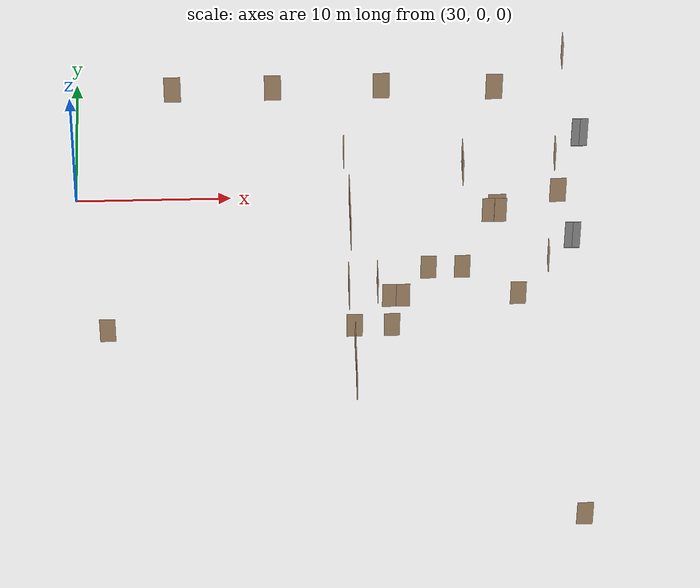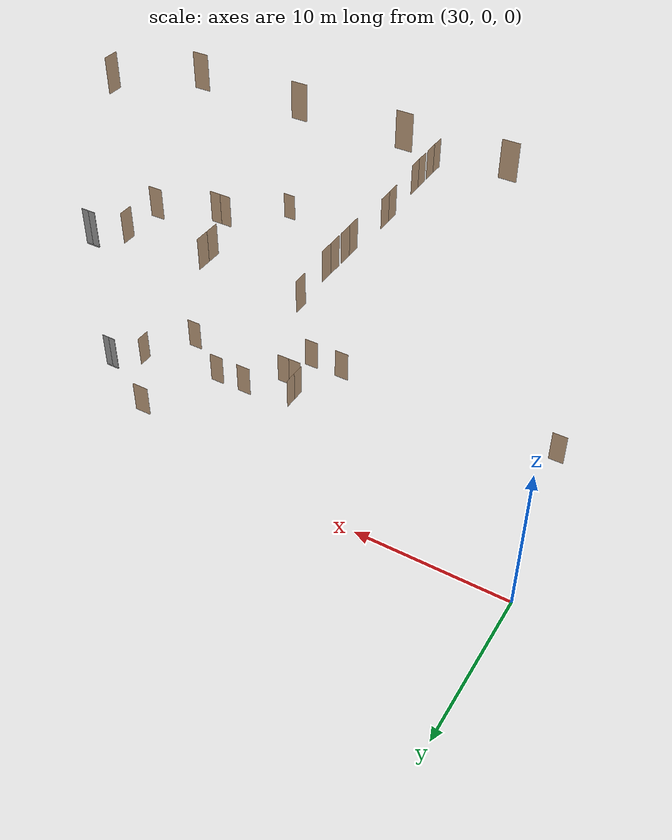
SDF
<sdf version="1.7">
 <world name="world">
  <include><uri>model://sun</uri></include>
  <model name="l1_door16">
   <pose>49.225 -8.125 0.0 0 0 1.5707963267948966</pose>
   <link name="right">
    <pose>-0.4375 0 1.11 0 0 0</pose>
    <visual name="right_visual">
     <geometry><box><size>0.865 0.03 2.2</size></box></geometry>
     <material><ambient>0.5 0.25 0 0.6</ambient><diffuse>0.5 0.25 0 0.6</diffuse></material>
    </visual>
    <collision name="right_collision">
     <geometry><box><size>0.865 0.03 2.2</size></box></geometry>
     <surface><contact><collide_bitmask>0x02</collide_bitmask></contact></surface>
    </collision>
    <inertial>
     <mass>50.0</mass>
     <inertia><ixx>20.17041666666667</ixx><iyy>23.284270833333338</iyy><izz>3.121354166666667</izz></inertia>
    </inertial>
   </link>
   <joint name="right_joint" type="revolute">
    <parent>world</parent>
    <child>right</child>
    <axis><xyz>0 0 1</xyz><limit><lower>0</lower><upper>1.57</upper></limit></axis>
    <pose>-0.4375 0 0 0 0 0</pose>
   </joint>
   <link name="left">
    <pose>0.4375 0 1.11 0 0 0</pose>
    <visual name="left_visual">
     <geometry><box><size>0.865 0.03 2.2</size></box></geometry>
     <material><ambient>0.5 0.25 0 0.6</ambient><diffuse>0.5 0.25 0 0.6</diffuse></material>
    </visual>
    <collision name="left_collision">
     <geometry><box><size>0.865 0.03 2.2</size></box></geometry>
     <surface><contact><collide_bitmask>0x02</collide_bitmask></contact></surface>
    </collision>
    <inertial>
     <mass>50.0</mass>
     <inertia><ixx>20.17041666666667</ixx><iyy>23.284270833333338</iyy><izz>3.121354166666667</izz></inertia>
    </inertial>
   </link>
   <joint name="left_joint" type="revolute">
    <parent>world</parent>
    <child>left</child>
    <axis><xyz>0 0 1</xyz><limit><lower>-1.57</lower><upper>0</upper></limit></axis>
    <pose>0.4375 0 0 0 0 0</pose>
   </joint>
   <plugin name="door" filename="libdoor.so">
    <v_max_door>0.5</v_max_door>
    <a_max_door>0.3</a_max_door>
    <a_nom_door>0.15</a_nom_door>
    <dx_min_door>0.01</dx_min_door>
    <f_max_door>500.0</f_max_door>
    <door name="l1_door16" type="DoubleSwingDoor" left_joint_name="left_joint" right_joint_name="right_joint"/>
   </plugin>
  </model>
  <model name="l1_door14">
   <pose>52.5 -7.0 0.0 0 0 3.141592653589793</pose>
   <plugin name="door" filename="libdoor.so">
    <v_max_door>0.5</v_max_door>
    <a_max_door>0.3</a_max_door>
    <a_nom_door>0.15</a_nom_door>
    <dx_min_door>0.01</dx_min_door>
    <f_max_door>500.0</f_max_door>
    <door name="l1_door14" type="SwingDoor" left_joint_name="left_joint" right_joint_name="empty_joint"/>
   </plugin>
   <link name="left">
    <pose>0 0 1.11 0 0 0</pose>
    <visual name="left_visual">
     <geometry><box><size>0.99 0.03 2.2</size></box></geometry>
     <material><ambient>0.5 0.25 0 0.6</ambient><diffuse>0.5 0.25 0 0.6</diffuse></material>
    </visual>
    <collision name="left_collision">
     <geometry><box><size>0.99 0.03 2.2</size></box></geometry>
     <surface><contact><collide_bitmask>0x02</collide_bitmask></contact></surface>
    </collision>
    <inertial>
     <mass>50.0</mass>
     <inertia><ixx>20.17041666666667</ixx><iyy>24.250416666666673</iyy><izz>4.0875</izz></inertia>
    </inertial>
   </link>
   <joint name="left_joint" type="revolute">
    <parent>world</parent>
    <child>left</child>
    <axis><xyz>0 0 1</xyz><limit><lower>-1.57</lower><upper>0</upper></limit></axis>
    <pose>0.5 0 0 0 0 0</pose>
   </joint>
  </model>
  <model name="l1_door13">
   <pose>54.650000000000006 -7.0 0.0 0 0 3.141592653589793</pose>
   <plugin name="door" filename="libdoor.so">
    <v_max_door>0.5</v_max_door>
    <a_max_door>0.3</a_max_door>
    <a_nom_door>0.15</a_nom_door>
    <dx_min_door>0.01</dx_min_door>
    <f_max_door>500.0</f_max_door>
    <door name="l1_door13" type="SwingDoor" left_joint_name="empty_joint" right_joint_name="right_joint"/>
   </plugin>
   <link name="right">
    <pose>0 0 1.11 0 0 0</pose>
    <visual name="right_visual">
     <geometry><box><size>0.99 0.03 2.2</size></box></geometry>
     <material><ambient>0.5 0.25 0 0.6</ambient><diffuse>0.5 0.25 0 0.6</diffuse></material>
    </visual>
    <collision name="right_collision">
     <geometry><box><size>0.99 0.03 2.2</size></box></geometry>
     <surface><contact><collide_bitmask>0x02</collide_bitmask></contact></surface>
    </collision>
    <inertial>
     <mass>50.0</mass>
     <inertia><ixx>20.17041666666667</ixx><iyy>24.250416666666673</iyy><izz>4.0875</izz></inertia>
    </inertial>
   </link>
   <joint name="right_joint" type="revolute">
    <parent>world</parent>
    <child>right</child>
    <axis><xyz>0 0 1</xyz><limit><lower>0</lower><upper>1.57</upper></limit></axis>
    <pose>0.5 0 0 0 0 0</pose>
   </joint>
  </model>
  <model name="l1_door11">
   <pose>60.2 -6.25 0.0 0 0 -1.5707963267948966</pose>
   <plugin name="door" filename="libdoor.so">
    <v_max_door>0.5</v_max_door>
    <a_max_door>0.3</a_max_door>
    <a_nom_door>0.15</a_nom_door>
    <dx_min_door>0.01</dx_min_door>
    <f_max_door>500.0</f_max_door>
    <door name="l1_door11" type="SwingDoor" left_joint_name="left_joint" right_joint_name="empty_joint"/>
   </plugin>
   <link name="left">
    <pose>0 0 1.11 0 0 0</pose>
    <visual name="left_visual">
     <geometry><box><size>0.99 0.03 2.2</size></box></geometry>
     <material><ambient>0.5 0.25 0 0.6</ambient><diffuse>0.5 0.25 0 0.6</diffuse></material>
    </visual>
    <collision name="left_collision">
     <geometry><box><size>0.99 0.03 2.2</size></box></geometry>
     <surface><contact><collide_bitmask>0x02</collide_bitmask></contact></surface>
    </collision>
    <inertial>
     <mass>50.0</mass>
     <inertia><ixx>20.17041666666667</ixx><iyy>24.250416666666673</iyy><izz>4.0875</izz></inertia>
    </inertial>
   </link>
   <joint name="left_joint" type="revolute">
    <parent>world</parent>
    <child>left</child>
    <axis><xyz>0 0 1</xyz><limit><lower>-1.57</lower><upper>0</upper></limit></axis>
    <pose>0.5 0 0 0 0 0</pose>
   </joint>
  </model>
  <model name="l1_door15">
   <pose>50.35 -9.25 0.0 0 0 3.141592653589793</pose>
   <link name="right">
    <pose>-0.4375 0 1.11 0 0 0</pose>
    <visual name="right_visual">
     <geometry><box><size>0.865 0.03 2.2</size></box></geometry>
     <material><ambient>0.5 0.25 0 0.6</ambient><diffuse>0.5 0.25 0 0.6</diffuse></material>
    </visual>
    <collision name="right_collision">
     <geometry><box><size>0.865 0.03 2.2</size></box></geometry>
     <surface><contact><collide_bitmask>0x02</collide_bitmask></contact></surface>
    </collision>
    <inertial>
     <mass>50.0</mass>
     <inertia><ixx>20.17041666666667</ixx><iyy>23.284270833333338</iyy><izz>3.121354166666667</izz></inertia>
    </inertial>
   </link>
   <joint name="right_joint" type="revolute">
    <parent>world</parent>
    <child>right</child>
    <axis><xyz>0 0 1</xyz><limit><lower>0</lower><upper>1.57</upper></limit></axis>
    <pose>-0.4375 0 0 0 0 0</pose>
   </joint>
   <link name="left">
    <pose>0.4375 0 1.11 0 0 0</pose>
    <visual name="left_visual">
     <geometry><box><size>0.865 0.03 2.2</size></box></geometry>
     <material><ambient>0.5 0.25 0 0.6</ambient><diffuse>0.5 0.25 0 0.6</diffuse></material>
    </visual>
    <collision name="left_collision">
     <geometry><box><size>0.865 0.03 2.2</size></box></geometry>
     <surface><contact><collide_bitmask>0x02</collide_bitmask></contact></surface>
    </collision>
    <inertial>
     <mass>50.0</mass>
     <inertia><ixx>20.17041666666667</ixx><iyy>23.284270833333338</iyy><izz>3.121354166666667</izz></inertia>
    </inertial>
   </link>
   <joint name="left_joint" type="revolute">
    <parent>world</parent>
    <child>left</child>
    <axis><xyz>0 0 1</xyz><limit><lower>-1.57</lower><upper>0</upper></limit></axis>
    <pose>0.4375 0 0 0 0 0</pose>
   </joint>
   <plugin name="door" filename="libdoor.so">
    <v_max_door>0.5</v_max_door>
    <a_max_door>0.3</a_max_door>
    <a_nom_door>0.15</a_nom_door>
    <dx_min_door>0.01</dx_min_door>
    <f_max_door>500.0</f_max_door>
    <door name="l1_door15" type="DoubleSwingDoor" left_joint_name="left_joint" right_joint_name="right_joint"/>
   </plugin>
  </model>
  <model name="dining_3">
   <pose>32.1 -11.600000000000001 0.0 0 0 0.0</pose>
   <plugin name="door" filename="libdoor.so">
    <v_max_door>0.5</v_max_door>
    <a_max_door>0.3</a_max_door>
    <a_nom_door>0.15</a_nom_door>
    <dx_min_door>0.01</dx_min_door>
    <f_max_door>500.0</f_max_door>
    <door name="dining_3" type="SwingDoor" left_joint_name="empty_joint" right_joint_name="right_joint"/>
   </plugin>
   <link name="right">
    <pose>0 0 1.11 0 0 0</pose>
    <visual name="right_visual">
     <geometry><box><size>0.99 0.03 2.2</size></box></geometry>
     <material><ambient>0.5 0.25 0 0.6</ambient><diffuse>0.5 0.25 0 0.6</diffuse></material>
    </visual>
    <collision name="right_collision">
     <geometry><box><size>0.99 0.03 2.2</size></box></geometry>
     <surface><contact><collide_bitmask>0x02</collide_bitmask></contact></surface>
    </collision>
    <inertial>
     <mass>50.0</mass>
     <inertia><ixx>20.17041666666667</ixx><iyy>24.250416666666673</iyy><izz>4.0875</izz></inertia>
    </inertial>
   </link>
   <joint name="right_joint" type="revolute">
    <parent>world</parent>
    <child>right</child>
    <axis><xyz>0 0 1</xyz><limit><lower>0</lower><upper>1.57</upper></limit></axis>
    <pose>0.5 0 0 0 0 0</pose>
   </joint>
  </model>
  <model name="dining_2">
   <pose>47.650000000000006 -11.600000000000001 0.0 0 0 3.141592653589793</pose>
   <plugin name="door" filename="libdoor.so">
    <v_max_door>0.5</v_max_door>
    <a_max_door>0.3</a_max_door>
    <a_nom_door>0.15</a_nom_door>
    <dx_min_door>0.01</dx_min_door>
    <f_max_door>500.0</f_max_door>
    <door name="dining_2" type="SwingDoor" left_joint_name="left_joint" right_joint_name="empty_joint"/>
   </plugin>
   <link name="left">
    <pose>0 0 1.11 0 0 0</pose>
    <visual name="left_visual">
     <geometry><box><size>0.99 0.03 2.2</size></box></geometry>
     <material><ambient>0.5 0.25 0 0.6</ambient><diffuse>0.5 0.25 0 0.6</diffuse></material>
    </visual>
    <collision name="left_collision">
     <geometry><box><size>0.99 0.03 2.2</size></box></geometry>
     <surface><contact><collide_bitmask>0x02</collide_bitmask></contact></surface>
    </collision>
    <inertial>
     <mass>50.0</mass>
     <inertia><ixx>20.17041666666667</ixx><iyy>24.250416666666673</iyy><izz>4.0875</izz></inertia>
    </inertial>
   </link>
   <joint name="left_joint" type="revolute">
    <parent>world</parent>
    <child>left</child>
    <axis><xyz>0 0 1</xyz><limit><lower>-1.57</lower><upper>0</upper></limit></axis>
    <pose>0.5 0 0 0 0 0</pose>
   </joint>
  </model>
  <model name="dining_1">
   <pose>50.0 -11.600000000000001 0.0 0 0 0.0</pose>
   <plugin name="door" filename="libdoor.so">
    <v_max_door>0.5</v_max_door>
    <a_max_door>0.3</a_max_door>
    <a_nom_door>0.15</a_nom_door>
    <dx_min_door>0.01</dx_min_door>
    <f_max_door>500.0</f_max_door>
    <door name="dining_1" type="SwingDoor" left_joint_name="empty_joint" right_joint_name="right_joint"/>
   </plugin>
   <link name="right">
    <pose>0 0 1.11 0 0 0</pose>
    <visual name="right_visual">
     <geometry><box><size>0.99 0.03 2.2</size></box></geometry>
     <material><ambient>0.5 0.25 0 0.6</ambient><diffuse>0.5 0.25 0 0.6</diffuse></material>
    </visual>
    <collision name="right_collision">
     <geometry><box><size>0.99 0.03 2.2</size></box></geometry>
     <surface><contact><collide_bitmask>0x02</collide_bitmask></contact></surface>
    </collision>
    <inertial>
     <mass>50.0</mass>
     <inertia><ixx>20.17041666666667</ixx><iyy>24.250416666666673</iyy><izz>4.0875</izz></inertia>
    </inertial>
   </link>
   <joint name="right_joint" type="revolute">
    <parent>world</parent>
    <child>right</child>
    <axis><xyz>0 0 1</xyz><limit><lower>0</lower><upper>1.57</upper></limit></axis>
    <pose>0.5 0 0 0 0 0</pose>
   </joint>
  </model>
  <model name="l1_door12">
   <pose>58.1 -9.25 0.0 0 0 3.141592653589793</pose>
   <plugin name="door" filename="libdoor.so">
    <v_max_door>0.5</v_max_door>
    <a_max_door>0.3</a_max_door>
    <a_nom_door>0.15</a_nom_door>
    <dx_min_door>0.01</dx_min_door>
    <f_max_door>500.0</f_max_door>
    <door name="l1_door12" type="SwingDoor" left_joint_name="left_joint" right_joint_name="empty_joint"/>
   </plugin>
   <link name="left">
    <pose>0 0 1.11 0 0 0</pose>
    <visual name="left_visual">
     <geometry><box><size>0.99 0.03 2.2</size></box></geometry>
     <material><ambient>0.5 0.25 0 0.6</ambient><diffuse>0.5 0.25 0 0.6</diffuse></material>
    </visual>
    <collision name="left_collision">
     <geometry><box><size>0.99 0.03 2.2</size></box></geometry>
     <surface><contact><collide_bitmask>0x02</collide_bitmask></contact></surface>
    </collision>
    <inertial>
     <mass>50.0</mass>
     <inertia><ixx>20.17041666666667</ixx><iyy>24.250416666666673</iyy><izz>4.0875</izz></inertia>
    </inertial>
   </link>
   <joint name="left_joint" type="revolute">
    <parent>world</parent>
    <child>left</child>
    <axis><xyz>0 0 1</xyz><limit><lower>-1.57</lower><upper>0</upper></limit></axis>
    <pose>0.5 0 0 0 0 0</pose>
   </joint>
  </model>
  <model name="exit_2">
   <pose>61.2 -26.6 0.0 0 0 0.0</pose>
   <plugin name="door" filename="libdoor.so">
    <v_max_door>0.5</v_max_door>
    <a_max_door>0.3</a_max_door>
    <a_nom_door>0.15</a_nom_door>
    <dx_min_door>0.01</dx_min_door>
    <f_max_door>500.0</f_max_door>
    <door name="exit_2" type="SwingDoor" left_joint_name="empty_joint" right_joint_name="right_joint"/>
   </plugin>
   <link name="right">
    <pose>0 0 1.11 0 0 0</pose>
    <visual name="right_visual">
     <geometry><box><size>0.99 0.03 2.2</size></box></geometry>
     <material><ambient>0.5 0.25 0 0.6</ambient><diffuse>0.5 0.25 0 0.6</diffuse></material>
    </visual>
    <collision name="right_collision">
     <geometry><box><size>0.99 0.03 2.2</size></box></geometry>
     <surface><contact><collide_bitmask>0x02</collide_bitmask></contact></surface>
    </collision>
    <inertial>
     <mass>50.0</mass>
     <inertia><ixx>20.17041666666667</ixx><iyy>24.250416666666673</iyy><izz>4.0875</izz></inertia>
    </inertial>
   </link>
   <joint name="right_joint" type="revolute">
    <parent>world</parent>
    <child>right</child>
    <axis><xyz>0 0 1</xyz><limit><lower>0</lower><upper>1.57</upper></limit></axis>
    <pose>0.5 0 0 0 0 0</pose>
   </joint>
  </model>
  <model name="l1_door20">
   <pose>57.125 -2.0 0.0 0 0 3.141592653589793</pose>
   <plugin name="door" filename="libdoor.so">
    <v_max_door>0.5</v_max_door>
    <a_max_door>0.3</a_max_door>
    <a_nom_door>0.15</a_nom_door>
    <dx_min_door>0.01</dx_min_door>
    <f_max_door>500.0</f_max_door>
    <door name="l1_door20" type="SwingDoor" left_joint_name="empty_joint" right_joint_name="right_joint"/>
   </plugin>
   <link name="right">
    <pose>0 0 1.11 0 0 0</pose>
    <visual name="right_visual">
     <geometry><box><size>1.1399999999999986 0.03 2.2</size></box></geometry>
     <material><ambient>0.5 0.25 0 0.6</ambient><diffuse>0.5 0.25 0 0.6</diffuse></material>
    </visual>
    <collision name="right_collision">
     <geometry><box><size>1.1399999999999986 0.03 2.2</size></box></geometry>
     <surface><contact><collide_bitmask>0x02</collide_bitmask></contact></surface>
    </collision>
    <inertial>
     <mass>50.0</mass>
     <inertia><ixx>20.17041666666667</ixx><iyy>25.58166666666666</iyy><izz>5.418749999999987</izz></inertia>
    </inertial>
   </link>
   <joint name="right_joint" type="revolute">
    <parent>world</parent>
    <child>right</child>
    <axis><xyz>0 0 1</xyz><limit><lower>0</lower><upper>1.57</upper></limit></axis>
    <pose>0.5749999999999993 0 0 0 0 0</pose>
   </joint>
  </model>
  <model name="ballroom_side0">
   <pose>47.1 -5.75 10.0 0 0 1.5707963267948966</pose>
   <plugin name="door" filename="libdoor.so">
    <v_max_door>0.5</v_max_door>
    <a_max_door>0.3</a_max_door>
    <a_nom_door>0.15</a_nom_door>
    <dx_min_door>0.01</dx_min_door>
    <f_max_door>500.0</f_max_door>
    <door name="ballroom_side0" type="SwingDoor" left_joint_name="empty_joint" right_joint_name="right_joint"/>
   </plugin>
   <link name="right">
    <pose>0 0 1.11 0 0 0</pose>
    <visual name="right_visual">
     <geometry><box><size>0.99 0.03 2.2</size></box></geometry>
     <material><ambient>0.5 0.25 0 0.6</ambient><diffuse>0.5 0.25 0 0.6</diffuse></material>
    </visual>
    <collision name="right_collision">
     <geometry><box><size>0.99 0.03 2.2</size></box></geometry>
     <surface><contact><collide_bitmask>0x02</collide_bitmask></contact></surface>
    </collision>
    <inertial>
     <mass>50.0</mass>
     <inertia><ixx>20.17041666666667</ixx><iyy>24.250416666666673</iyy><izz>4.0875</izz></inertia>
    </inertial>
   </link>
   <joint name="right_joint" type="revolute">
    <parent>world</parent>
    <child>right</child>
    <axis><xyz>0 0 1</xyz><limit><lower>0</lower><upper>1.57</upper></limit></axis>
    <pose>0.5 0 0 0 0 0</pose>
   </joint>
  </model>
  <model name="ballroom_door3">
   <pose>47.35 -23.400000000000002 10.0 0 0 -1.5707963267948966</pose>
   <link name="right">
    <pose>-0.5 0 1.11 0 0 0</pose>
    <visual name="right_visual">
     <geometry><box><size>0.99 0.03 2.2</size></box></geometry>
     <material><ambient>0.5 0.25 0 0.6</ambient><diffuse>0.5 0.25 0 0.6</diffuse></material>
    </visual>
    <collision name="right_collision">
     <geometry><box><size>0.99 0.03 2.2</size></box></geometry>
     <surface><contact><collide_bitmask>0x02</collide_bitmask></contact></surface>
    </collision>
    <inertial>
     <mass>50.0</mass>
     <inertia><ixx>20.17041666666667</ixx><iyy>24.250416666666673</iyy><izz>4.0875</izz></inertia>
    </inertial>
   </link>
   <joint name="right_joint" type="revolute">
    <parent>world</parent>
    <child>right</child>
    <axis><xyz>0 0 1</xyz><limit><lower>0</lower><upper>1.57</upper></limit></axis>
    <pose>-0.5 0 0 0 0 0</pose>
   </joint>
   <link name="left">
    <pose>0.5 0 1.11 0 0 0</pose>
    <visual name="left_visual">
     <geometry><box><size>0.99 0.03 2.2</size></box></geometry>
     <material><ambient>0.5 0.25 0 0.6</ambient><diffuse>0.5 0.25 0 0.6</diffuse></material>
    </visual>
    <collision name="left_collision">
     <geometry><box><size>0.99 0.03 2.2</size></box></geometry>
     <surface><contact><collide_bitmask>0x02</collide_bitmask></contact></surface>
    </collision>
    <inertial>
     <mass>50.0</mass>
     <inertia><ixx>20.17041666666667</ixx><iyy>24.250416666666673</iyy><izz>4.0875</izz></inertia>
    </inertial>
   </link>
   <joint name="left_joint" type="revolute">
    <parent>world</parent>
    <child>left</child>
    <axis><xyz>0 0 1</xyz><limit><lower>-1.57</lower><upper>0</upper></limit></axis>
    <pose>0.5 0 0 0 0 0</pose>
   </joint>
   <plugin name="door" filename="libdoor.so">
    <v_max_door>0.5</v_max_door>
    <a_max_door>0.3</a_max_door>
    <a_nom_door>0.15</a_nom_door>
    <dx_min_door>0.01</dx_min_door>
    <f_max_door>500.0</f_max_door>
    <door name="ballroom_door3" type="DoubleSwingDoor" left_joint_name="left_joint" right_joint_name="right_joint"/>
   </plugin>
  </model>
  <model name="ballroom_door2">
   <pose>47.35 -21.150000000000002 10.0 0 0 -1.5707963267948966</pose>
   <link name="right">
    <pose>-0.5 0 1.11 0 0 0</pose>
    <visual name="right_visual">
     <geometry><box><size>0.99 0.03 2.2</size></box></geometry>
     <material><ambient>0.5 0.25 0 0.6</ambient><diffuse>0.5 0.25 0 0.6</diffuse></material>
    </visual>
    <collision name="right_collision">
     <geometry><box><size>0.99 0.03 2.2</size></box></geometry>
     <surface><contact><collide_bitmask>0x02</collide_bitmask></contact></surface>
    </collision>
    <inertial>
     <mass>50.0</mass>
     <inertia><ixx>20.17041666666667</ixx><iyy>24.250416666666673</iyy><izz>4.0875</izz></inertia>
    </inertial>
   </link>
   <joint name="right_joint" type="revolute">
    <parent>world</parent>
    <child>right</child>
    <axis><xyz>0 0 1</xyz><limit><lower>0</lower><upper>1.57</upper></limit></axis>
    <pose>-0.5 0 0 0 0 0</pose>
   </joint>
   <link name="left">
    <pose>0.5 0 1.11 0 0 0</pose>
    <visual name="left_visual">
     <geometry><box><size>0.99 0.03 2.2</size></box></geometry>
     <material><ambient>0.5 0.25 0 0.6</ambient><diffuse>0.5 0.25 0 0.6</diffuse></material>
    </visual>
    <collision name="left_collision">
     <geometry><box><size>0.99 0.03 2.2</size></box></geometry>
     <surface><contact><collide_bitmask>0x02</collide_bitmask></contact></surface>
    </collision>
    <inertial>
     <mass>50.0</mass>
     <inertia><ixx>20.17041666666667</ixx><iyy>24.250416666666673</iyy><izz>4.0875</izz></inertia>
    </inertial>
   </link>
   <joint name="left_joint" type="revolute">
    <parent>world</parent>
    <child>left</child>
    <axis><xyz>0 0 1</xyz><limit><lower>-1.57</lower><upper>0</upper></limit></axis>
    <pose>0.5 0 0 0 0 0</pose>
   </joint>
   <plugin name="door" filename="libdoor.so">
    <v_max_door>0.5</v_max_door>
    <a_max_door>0.3</a_max_door>
    <a_nom_door>0.15</a_nom_door>
    <dx_min_door>0.01</dx_min_door>
    <f_max_door>500.0</f_max_door>
    <door name="ballroom_door2" type="DoubleSwingDoor" left_joint_name="left_joint" right_joint_name="right_joint"/>
   </plugin>
  </model>
  <model name="ballroom_door0">
   <pose>47.35 -9.600000000000001 10.0 0 0 1.5707963267948966</pose>
   <link name="right">
    <pose>0.5000000000000004 0 1.11 0 0 0</pose>
    <visual name="right_visual">
     <geometry><box><size>0.9900000000000009 0.03 2.2</size></box></geometry>
     <material><ambient>0.5 0.25 0 0.6</ambient><diffuse>0.5 0.25 0 0.6</diffuse></material>
    </visual>
    <collision name="right_collision">
     <geometry><box><size>0.9900000000000009 0.03 2.2</size></box></geometry>
     <surface><contact><collide_bitmask>0x02</collide_bitmask></contact></surface>
    </collision>
    <inertial>
     <mass>50.0</mass>
     <inertia><ixx>20.17041666666667</ixx><iyy>24.25041666666668</iyy><izz>4.0875000000000075</izz></inertia>
    </inertial>
   </link>
   <joint name="right_joint" type="revolute">
    <parent>world</parent>
    <child>right</child>
    <axis><xyz>0 0 1</xyz><limit><lower>0</lower><upper>1.57</upper></limit></axis>
    <pose>0.5000000000000004 0 0 0 0 0</pose>
   </joint>
   <link name="left">
    <pose>-0.5000000000000004 0 1.11 0 0 0</pose>
    <visual name="left_visual">
     <geometry><box><size>0.9900000000000009 0.03 2.2</size></box></geometry>
     <material><ambient>0.5 0.25 0 0.6</ambient><diffuse>0.5 0.25 0 0.6</diffuse></material>
    </visual>
    <collision name="left_collision">
     <geometry><box><size>0.9900000000000009 0.03 2.2</size></box></geometry>
     <surface><contact><collide_bitmask>0x02</collide_bitmask></contact></surface>
    </collision>
    <inertial>
     <mass>50.0</mass>
     <inertia><ixx>20.17041666666667</ixx><iyy>24.25041666666668</iyy><izz>4.0875000000000075</izz></inertia>
    </inertial>
   </link>
   <joint name="left_joint" type="revolute">
    <parent>world</parent>
    <child>left</child>
    <axis><xyz>0 0 1</xyz><limit><lower>-1.57</lower><upper>0</upper></limit></axis>
    <pose>-0.5000000000000004 0 0 0 0 0</pose>
   </joint>
   <plugin name="door" filename="libdoor.so">
    <v_max_door>0.5</v_max_door>
    <a_max_door>0.3</a_max_door>
    <a_nom_door>0.15</a_nom_door>
    <dx_min_door>0.01</dx_min_door>
    <f_max_door>500.0</f_max_door>
    <door name="ballroom_door0" type="DoubleSwingDoor" left_joint_name="left_joint" right_joint_name="right_joint"/>
   </plugin>
  </model>
  <model name="ballroom_door1">
   <pose>47.35 -11.850000000000001 10.0 0 0 -1.5707963267948966</pose>
   <link name="right">
    <pose>-0.5 0 1.11 0 0 0</pose>
    <visual name="right_visual">
     <geometry><box><size>0.99 0.03 2.2</size></box></geometry>
     <material><ambient>0.5 0.25 0 0.6</ambient><diffuse>0.5 0.25 0 0.6</diffuse></material>
    </visual>
    <collision name="right_collision">
     <geometry><box><size>0.99 0.03 2.2</size></box></geometry>
     <surface><contact><collide_bitmask>0x02</collide_bitmask></contact></surface>
    </collision>
    <inertial>
     <mass>50.0</mass>
     <inertia><ixx>20.17041666666667</ixx><iyy>24.250416666666673</iyy><izz>4.0875</izz></inertia>
    </inertial>
   </link>
   <joint name="right_joint" type="revolute">
    <parent>world</parent>
    <child>right</child>
    <axis><xyz>0 0 1</xyz><limit><lower>0</lower><upper>1.57</upper></limit></axis>
    <pose>-0.5 0 0 0 0 0</pose>
   </joint>
   <link name="left">
    <pose>0.5 0 1.11 0 0 0</pose>
    <visual name="left_visual">
     <geometry><box><size>0.99 0.03 2.2</size></box></geometry>
     <material><ambient>0.5 0.25 0 0.6</ambient><diffuse>0.5 0.25 0 0.6</diffuse></material>
    </visual>
    <collision name="left_collision">
     <geometry><box><size>0.99 0.03 2.2</size></box></geometry>
     <surface><contact><collide_bitmask>0x02</collide_bitmask></contact></surface>
    </collision>
    <inertial>
     <mass>50.0</mass>
     <inertia><ixx>20.17041666666667</ixx><iyy>24.250416666666673</iyy><izz>4.0875</izz></inertia>
    </inertial>
   </link>
   <joint name="left_joint" type="revolute">
    <parent>world</parent>
    <child>left</child>
    <axis><xyz>0 0 1</xyz><limit><lower>-1.57</lower><upper>0</upper></limit></axis>
    <pose>0.5 0 0 0 0 0</pose>
   </joint>
   <plugin name="door" filename="libdoor.so">
    <v_max_door>0.5</v_max_door>
    <a_max_door>0.3</a_max_door>
    <a_nom_door>0.15</a_nom_door>
    <dx_min_door>0.01</dx_min_door>
    <f_max_door>500.0</f_max_door>
    <door name="ballroom_door1" type="DoubleSwingDoor" left_joint_name="left_joint" right_joint_name="right_joint"/>
   </plugin>
  </model>
  <model name="ballroom_side1">
   <pose>47.1 -16.5 10.0 0 0 1.5707963267948966</pose>
   <link name="right">
    <pose>-0.5 0 1.11 0 0 0</pose>
    <visual name="right_visual">
     <geometry><box><size>0.99 0.03 2.2</size></box></geometry>
     <material><ambient>0.5 0.25 0 0.6</ambient><diffuse>0.5 0.25 0 0.6</diffuse></material>
    </visual>
    <collision name="right_collision">
     <geometry><box><size>0.99 0.03 2.2</size></box></geometry>
     <surface><contact><collide_bitmask>0x02</collide_bitmask></contact></surface>
    </collision>
    <inertial>
     <mass>50.0</mass>
     <inertia><ixx>20.17041666666667</ixx><iyy>24.250416666666673</iyy><izz>4.0875</izz></inertia>
    </inertial>
   </link>
   <joint name="right_joint" type="revolute">
    <parent>world</parent>
    <child>right</child>
    <axis><xyz>0 0 1</xyz><limit><lower>0</lower><upper>1.57</upper></limit></axis>
    <pose>-0.5 0 0 0 0 0</pose>
   </joint>
   <link name="left">
    <pose>0.5 0 1.11 0 0 0</pose>
    <visual name="left_visual">
     <geometry><box><size>0.99 0.03 2.2</size></box></geometry>
     <material><ambient>0.5 0.25 0 0.6</ambient><diffuse>0.5 0.25 0 0.6</diffuse></material>
    </visual>
    <collision name="left_collision">
     <geometry><box><size>0.99 0.03 2.2</size></box></geometry>
     <surface><contact><collide_bitmask>0x02</collide_bitmask></contact></surface>
    </collision>
    <inertial>
     <mass>50.0</mass>
     <inertia><ixx>20.17041666666667</ixx><iyy>24.250416666666673</iyy><izz>4.0875</izz></inertia>
    </inertial>
   </link>
   <joint name="left_joint" type="revolute">
    <parent>world</parent>
    <child>left</child>
    <axis><xyz>0 0 1</xyz><limit><lower>-1.57</lower><upper>0</upper></limit></axis>
    <pose>0.5 0 0 0 0 0</pose>
   </joint>
   <plugin name="door" filename="libdoor.so">
    <v_max_door>0.5</v_max_door>
    <a_max_door>0.3</a_max_door>
    <a_nom_door>0.15</a_nom_door>
    <dx_min_door>0.01</dx_min_door>
    <f_max_door>500.0</f_max_door>
    <door name="ballroom_side1" type="DoubleSwingDoor" left_joint_name="left_joint" right_joint_name="right_joint"/>
   </plugin>
  </model>
  <model name="conf_door4">
   <pose>54.45 -6.8500000000000005 10.0 0 0 1.5707963267948966</pose>
   <link name="right">
    <pose>0.5 0 1.11 0 0 0</pose>
    <visual name="right_visual">
     <geometry><box><size>0.99 0.03 2.2</size></box></geometry>
     <material><ambient>0.5 0.25 0 0.6</ambient><diffuse>0.5 0.25 0 0.6</diffuse></material>
    </visual>
    <collision name="right_collision">
     <geometry><box><size>0.99 0.03 2.2</size></box></geometry>
     <surface><contact><collide_bitmask>0x02</collide_bitmask></contact></surface>
    </collision>
    <inertial>
     <mass>50.0</mass>
     <inertia><ixx>20.17041666666667</ixx><iyy>24.250416666666673</iyy><izz>4.0875</izz></inertia>
    </inertial>
   </link>
   <joint name="right_joint" type="revolute">
    <parent>world</parent>
    <child>right</child>
    <axis><xyz>0 0 1</xyz><limit><lower>0</lower><upper>1.57</upper></limit></axis>
    <pose>0.5 0 0 0 0 0</pose>
   </joint>
   <link name="left">
    <pose>-0.5 0 1.11 0 0 0</pose>
    <visual name="left_visual">
     <geometry><box><size>0.99 0.03 2.2</size></box></geometry>
     <material><ambient>0.5 0.25 0 0.6</ambient><diffuse>0.5 0.25 0 0.6</diffuse></material>
    </visual>
    <collision name="left_collision">
     <geometry><box><size>0.99 0.03 2.2</size></box></geometry>
     <surface><contact><collide_bitmask>0x02</collide_bitmask></contact></surface>
    </collision>
    <inertial>
     <mass>50.0</mass>
     <inertia><ixx>20.17041666666667</ixx><iyy>24.250416666666673</iyy><izz>4.0875</izz></inertia>
    </inertial>
   </link>
   <joint name="left_joint" type="revolute">
    <parent>world</parent>
    <child>left</child>
    <axis><xyz>0 0 1</xyz><limit><lower>-1.57</lower><upper>0</upper></limit></axis>
    <pose>-0.5 0 0 0 0 0</pose>
   </joint>
   <plugin name="door" filename="libdoor.so">
    <v_max_door>0.5</v_max_door>
    <a_max_door>0.3</a_max_door>
    <a_nom_door>0.15</a_nom_door>
    <dx_min_door>0.01</dx_min_door>
    <f_max_door>500.0</f_max_door>
    <door name="conf_door4" type="DoubleSwingDoor" left_joint_name="left_joint" right_joint_name="right_joint"/>
   </plugin>
  </model>
  <model name="conf_door5">
   <pose>56.2 -10.75 10.0 0 0 3.141592653589793</pose>
   <link name="right">
    <pose>-0.375 0 1.11 0 0 0</pose>
    <visual name="right_visual">
     <geometry><box><size>0.74 0.03 2.2</size></box></geometry>
     <material><ambient>0.5 0.25 0 0.6</ambient><diffuse>0.5 0.25 0 0.6</diffuse></material>
    </visual>
    <collision name="right_collision">
     <geometry><box><size>0.74 0.03 2.2</size></box></geometry>
     <surface><contact><collide_bitmask>0x02</collide_bitmask></contact></surface>
    </collision>
    <inertial>
     <mass>50.0</mass>
     <inertia><ixx>20.17041666666667</ixx><iyy>22.448333333333338</iyy><izz>2.285416666666667</izz></inertia>
    </inertial>
   </link>
   <joint name="right_joint" type="revolute">
    <parent>world</parent>
    <child>right</child>
    <axis><xyz>0 0 1</xyz><limit><lower>0</lower><upper>1.57</upper></limit></axis>
    <pose>-0.375 0 0 0 0 0</pose>
   </joint>
   <link name="left">
    <pose>0.375 0 1.11 0 0 0</pose>
    <visual name="left_visual">
     <geometry><box><size>0.74 0.03 2.2</size></box></geometry>
     <material><ambient>0.5 0.25 0 0.6</ambient><diffuse>0.5 0.25 0 0.6</diffuse></material>
    </visual>
    <collision name="left_collision">
     <geometry><box><size>0.74 0.03 2.2</size></box></geometry>
     <surface><contact><collide_bitmask>0x02</collide_bitmask></contact></surface>
    </collision>
    <inertial>
     <mass>50.0</mass>
     <inertia><ixx>20.17041666666667</ixx><iyy>22.448333333333338</iyy><izz>2.285416666666667</izz></inertia>
    </inertial>
   </link>
   <joint name="left_joint" type="revolute">
    <parent>world</parent>
    <child>left</child>
    <axis><xyz>0 0 1</xyz><limit><lower>-1.57</lower><upper>0</upper></limit></axis>
    <pose>0.375 0 0 0 0 0</pose>
   </joint>
   <plugin name="door" filename="libdoor.so">
    <v_max_door>0.5</v_max_door>
    <a_max_door>0.3</a_max_door>
    <a_nom_door>0.15</a_nom_door>
    <dx_min_door>0.01</dx_min_door>
    <f_max_door>500.0</f_max_door>
    <door name="conf_door5" type="DoubleSwingDoor" left_joint_name="left_joint" right_joint_name="right_joint"/>
   </plugin>
  </model>
  <model name="conf_door6">
   <pose>60.2 -9.25 10.0 0 0 0.0</pose>
   <plugin name="door" filename="libdoor.so">
    <v_max_door>0.5</v_max_door>
    <a_max_door>0.3</a_max_door>
    <a_nom_door>0.15</a_nom_door>
    <dx_min_door>0.01</dx_min_door>
    <f_max_door>500.0</f_max_door>
    <door name="conf_door6" type="SwingDoor" left_joint_name="empty_joint" right_joint_name="right_joint"/>
   </plugin>
   <link name="right">
    <pose>0 0 1.11 0 0 0</pose>
    <visual name="right_visual">
     <geometry><box><size>0.99 0.03 2.2</size></box></geometry>
     <material><ambient>0.5 0.25 0 0.6</ambient><diffuse>0.5 0.25 0 0.6</diffuse></material>
    </visual>
    <collision name="right_collision">
     <geometry><box><size>0.99 0.03 2.2</size></box></geometry>
     <surface><contact><collide_bitmask>0x02</collide_bitmask></contact></surface>
    </collision>
    <inertial>
     <mass>50.0</mass>
     <inertia><ixx>20.17041666666667</ixx><iyy>24.250416666666673</iyy><izz>4.0875</izz></inertia>
    </inertial>
   </link>
   <joint name="right_joint" type="revolute">
    <parent>world</parent>
    <child>right</child>
    <axis><xyz>0 0 1</xyz><limit><lower>0</lower><upper>1.57</upper></limit></axis>
    <pose>0.5 0 0 0 0 0</pose>
   </joint>
  </model>
  <model name="conf_door12">
   <pose>60.2 -6.25 10.0 0 0 -1.5707963267948966</pose>
   <plugin name="door" filename="libdoor.so">
    <v_max_door>0.5</v_max_door>
    <a_max_door>0.3</a_max_door>
    <a_nom_door>0.15</a_nom_door>
    <dx_min_door>0.01</dx_min_door>
    <f_max_door>500.0</f_max_door>
    <door name="conf_door12" type="SwingDoor" left_joint_name="empty_joint" right_joint_name="right_joint"/>
   </plugin>
   <link name="right">
    <pose>0 0 1.11 0 0 0</pose>
    <visual name="right_visual">
     <geometry><box><size>0.99 0.03 2.2</size></box></geometry>
     <material><ambient>0.5 0.25 0 0.6</ambient><diffuse>0.5 0.25 0 0.6</diffuse></material>
    </visual>
    <collision name="right_collision">
     <geometry><box><size>0.99 0.03 2.2</size></box></geometry>
     <surface><contact><collide_bitmask>0x02</collide_bitmask></contact></surface>
    </collision>
    <inertial>
     <mass>50.0</mass>
     <inertia><ixx>20.17041666666667</ixx><iyy>24.250416666666673</iyy><izz>4.0875</izz></inertia>
    </inertial>
   </link>
   <joint name="right_joint" type="revolute">
    <parent>world</parent>
    <child>right</child>
    <axis><xyz>0 0 1</xyz><limit><lower>0</lower><upper>1.57</upper></limit></axis>
    <pose>0.5 0 0 0 0 0</pose>
   </joint>
  </model>
  <model name="room14_door">
   <pose>36.7 -9.25 20.0 0 0 3.141592653589793</pose>
   <plugin name="door" filename="libdoor.so">
    <v_max_door>0.5</v_max_door>
    <a_max_door>0.3</a_max_door>
    <a_nom_door>0.15</a_nom_door>
    <dx_min_door>0.01</dx_min_door>
    <f_max_door>500.0</f_max_door>
    <door name="room14_door" type="SwingDoor" left_joint_name="left_joint" right_joint_name="empty_joint"/>
   </plugin>
   <link name="left">
    <pose>0 0 1.11 0 0 0</pose>
    <visual name="left_visual">
     <geometry><box><size>0.99 0.03 2.2</size></box></geometry>
     <material><ambient>0.5 0.25 0 0.6</ambient><diffuse>0.5 0.25 0 0.6</diffuse></material>
    </visual>
    <collision name="left_collision">
     <geometry><box><size>0.99 0.03 2.2</size></box></geometry>
     <surface><contact><collide_bitmask>0x02</collide_bitmask></contact></surface>
    </collision>
    <inertial>
     <mass>50.0</mass>
     <inertia><ixx>20.17041666666667</ixx><iyy>24.250416666666673</iyy><izz>4.0875</izz></inertia>
    </inertial>
   </link>
   <joint name="left_joint" type="revolute">
    <parent>world</parent>
    <child>left</child>
    <axis><xyz>0 0 1</xyz><limit><lower>-1.57</lower><upper>0</upper></limit></axis>
    <pose>0.5 0 0 0 0 0</pose>
   </joint>
  </model>
  <model name="room15_door">
   <pose>42.7 -9.25 20.0 0 0 0.0</pose>
   <plugin name="door" filename="libdoor.so">
    <v_max_door>0.5</v_max_door>
    <a_max_door>0.3</a_max_door>
    <a_nom_door>0.15</a_nom_door>
    <dx_min_door>0.01</dx_min_door>
    <f_max_door>500.0</f_max_door>
    <door name="room15_door" type="SwingDoor" left_joint_name="empty_joint" right_joint_name="right_joint"/>
   </plugin>
   <link name="right">
    <pose>0 0 1.11 0 0 0</pose>
    <visual name="right_visual">
     <geometry><box><size>0.99 0.03 2.2</size></box></geometry>
     <material><ambient>0.5 0.25 0 0.6</ambient><diffuse>0.5 0.25 0 0.6</diffuse></material>
    </visual>
    <collision name="right_collision">
     <geometry><box><size>0.99 0.03 2.2</size></box></geometry>
     <surface><contact><collide_bitmask>0x02</collide_bitmask></contact></surface>
    </collision>
    <inertial>
     <mass>50.0</mass>
     <inertia><ixx>20.17041666666667</ixx><iyy>24.250416666666673</iyy><izz>4.0875</izz></inertia>
    </inertial>
   </link>
   <joint name="right_joint" type="revolute">
    <parent>world</parent>
    <child>right</child>
    <axis><xyz>0 0 1</xyz><limit><lower>0</lower><upper>1.57</upper></limit></axis>
    <pose>0.5 0 0 0 0 0</pose>
   </joint>
  </model>
  <model name="room16_door">
   <pose>49.2 -9.25 20.0 0 0 3.141592653589793</pose>
   <plugin name="door" filename="libdoor.so">
    <v_max_door>0.5</v_max_door>
    <a_max_door>0.3</a_max_door>
    <a_nom_door>0.15</a_nom_door>
    <dx_min_door>0.01</dx_min_door>
    <f_max_door>500.0</f_max_door>
    <door name="room16_door" type="SwingDoor" left_joint_name="left_joint" right_joint_name="empty_joint"/>
   </plugin>
   <link name="left">
    <pose>0 0 1.11 0 0 0</pose>
    <visual name="left_visual">
     <geometry><box><size>0.99 0.03 2.2</size></box></geometry>
     <material><ambient>0.5 0.25 0 0.6</ambient><diffuse>0.5 0.25 0 0.6</diffuse></material>
    </visual>
    <collision name="left_collision">
     <geometry><box><size>0.99 0.03 2.2</size></box></geometry>
     <surface><contact><collide_bitmask>0x02</collide_bitmask></contact></surface>
    </collision>
    <inertial>
     <mass>50.0</mass>
     <inertia><ixx>20.17041666666667</ixx><iyy>24.250416666666673</iyy><izz>4.0875</izz></inertia>
    </inertial>
   </link>
   <joint name="left_joint" type="revolute">
    <parent>world</parent>
    <child>left</child>
    <axis><xyz>0 0 1</xyz><limit><lower>-1.57</lower><upper>0</upper></limit></axis>
    <pose>0.5 0 0 0 0 0</pose>
   </joint>
  </model>
  <model name="room17_door">
   <pose>55.95 -9.5 20.0 0 0 0.0</pose>
   <plugin name="door" filename="libdoor.so">
    <v_max_door>0.5</v_max_door>
    <a_max_door>0.3</a_max_door>
    <a_nom_door>0.15</a_nom_door>
    <dx_min_door>0.01</dx_min_door>
    <f_max_door>500.0</f_max_door>
    <door name="room17_door" type="SwingDoor" left_joint_name="empty_joint" right_joint_name="right_joint"/>
   </plugin>
   <link name="right">
    <pose>0 0 1.11 0 0 0</pose>
    <visual name="right_visual">
     <geometry><box><size>0.99 0.03 2.2</size></box></geometry>
     <material><ambient>0.5 0.25 0 0.6</ambient><diffuse>0.5 0.25 0 0.6</diffuse></material>
    </visual>
    <collision name="right_collision">
     <geometry><box><size>0.99 0.03 2.2</size></box></geometry>
     <surface><contact><collide_bitmask>0x02</collide_bitmask></contact></surface>
    </collision>
    <inertial>
     <mass>50.0</mass>
     <inertia><ixx>20.17041666666667</ixx><iyy>24.250416666666673</iyy><izz>4.0875</izz></inertia>
    </inertial>
   </link>
   <joint name="right_joint" type="revolute">
    <parent>world</parent>
    <child>right</child>
    <axis><xyz>0 0 1</xyz><limit><lower>0</lower><upper>1.57</upper></limit></axis>
    <pose>0.5 0 0 0 0 0</pose>
   </joint>
  </model>
  <model name="door5">
   <pose>60.2 -6.75 20.0 0 0 -1.5707963267948966</pose>
   <plugin name="door" filename="libdoor.so">
    <v_max_door>0.5</v_max_door>
    <a_max_door>0.3</a_max_door>
    <a_nom_door>0.15</a_nom_door>
    <dx_min_door>0.01</dx_min_door>
    <f_max_door>500.0</f_max_door>
    <door name="door5" type="SwingDoor" left_joint_name="empty_joint" right_joint_name="right_joint"/>
   </plugin>
   <link name="right">
    <pose>0 0 1.11 0 0 0</pose>
    <visual name="right_visual">
     <geometry><box><size>0.99 0.03 2.2</size></box></geometry>
     <material><ambient>0.5 0.25 0 0.6</ambient><diffuse>0.5 0.25 0 0.6</diffuse></material>
    </visual>
    <collision name="right_collision">
     <geometry><box><size>0.99 0.03 2.2</size></box></geometry>
     <surface><contact><collide_bitmask>0x02</collide_bitmask></contact></surface>
    </collision>
    <inertial>
     <mass>50.0</mass>
     <inertia><ixx>20.17041666666667</ixx><iyy>24.250416666666673</iyy><izz>4.0875</izz></inertia>
    </inertial>
   </link>
   <joint name="right_joint" type="revolute">
    <parent>world</parent>
    <child>right</child>
    <axis><xyz>0 0 1</xyz><limit><lower>0</lower><upper>1.57</upper></limit></axis>
    <pose>0.5 0 0 0 0 0</pose>
   </joint>
  </model>
  <model name="ShaftDoor_Lift1_L1_door">
   <pose>61.825 -4.675 0.0 0 0 0.0</pose>
   <link name="right_door">
    <pose>0.25 0 1.25 0 0 0</pose>
    <visual name="right_door_visual">
     <geometry><box><size>0.5 0.03 2.5</size></box></geometry>
     <material>
      <ambient>0.5 0.5 0.5 1</ambient>
      <diffuse>0.7 0.7 0.7 1</diffuse>
      <specular>0.6 0.6 0.6 1</specular>
      <emissive>0.1 0.1 0.1 1</emissive>
     </material>
    </visual>
    <collision name="right_door_collision">
     <geometry><box><size>0.5 0.03 2.5</size></box></geometry>
     <surface><contact><collide_bitmask>0x02</collide_bitmask></contact></surface>
    </collision>
   </link>
   <joint name="right_joint" type="prismatic">
    <parent>world</parent>
    <child>right_door</child>
    <axis><xyz>1 0 0</xyz><limit><lower>0</lower><upper>0.5</upper></limit></axis>
   </joint>
   <link name="left_door">
    <pose>-0.25 0 1.25 0 0 0</pose>
    <visual name="left_door_visual">
     <geometry><box><size>0.5 0.03 2.5</size></box></geometry>
     <material>
      <ambient>0.5 0.5 0.5 1</ambient>
      <diffuse>0.7 0.7 0.7 1</diffuse>
      <specular>0.6 0.6 0.6 1</specular>
      <emissive>0.1 0.1 0.1 1</emissive>
     </material>
    </visual>
    <collision name="left_door_collision">
     <geometry><box><size>0.5 0.03 2.5</size></box></geometry>
     <surface><contact><collide_bitmask>0x02</collide_bitmask></contact></surface>
    </collision>
   </link>
   <joint name="left_joint" type="prismatic">
    <parent>world</parent>
    <child>left_door</child>
    <axis><xyz>1 0 0</xyz><limit><lower>-0.5</lower><upper>0</upper></limit></axis>
   </joint>
   <link name="ramp">
    <pose>0 0 -0.025 0 0 0</pose>
    <visual name="ramp_visual">
     <geometry><box><size>1.0 0.1 0.05</size></box></geometry>
     <material>
      <ambient>0.5 0.5 0.5 1</ambient>
      <diffuse>0.7 0.7 0.7 1</diffuse>
      <specular>0.6 0.6 0.6 1</specular>
      <emissive>0.1 0.1 0.1 1</emissive>
     </material>
    </visual>
    <collision name="ramp_collision">
     <geometry><box><size>1.0 0.1 0.05</size></box></geometry>
     <surface><contact><collide_bitmask>0x02</collide_bitmask></contact></surface>
    </collision>
   </link>
   <joint name="ramp_joint" type="fixed"><parent>world</parent><child>ramp</child></joint>
   <plugin name="door" filename="libdoor.so">
    <v_max_door>0.3</v_max_door>
    <a_max_door>0.2</a_max_door>
    <a_nom_door>0.1</a_nom_door>
    <dx_min_door>0.0001</dx_min_door>
    <f_max_door>35.0</f_max_door>
    <door left_joint_name="left_joint" name="ShaftDoor_Lift1_L1_door" right_joint_name="right_joint" type="DoubleSlidingDoor"/>
   </plugin>
  </model>
  <model name="ShaftDoor_Lift1_L2_door">
   <pose>61.825 -4.675 10.0 0 0 0.0</pose>
   <link name="right_door">
    <pose>0.25 0 1.25 0 0 0</pose>
    <visual name="right_door_visual">
     <geometry><box><size>0.5 0.03 2.5</size></box></geometry>
     <material>
      <ambient>0.5 0.5 0.5 1</ambient>
      <diffuse>0.7 0.7 0.7 1</diffuse>
      <specular>0.6 0.6 0.6 1</specular>
      <emissive>0.1 0.1 0.1 1</emissive>
     </material>
    </visual>
    <collision name="right_door_collision">
     <geometry><box><size>0.5 0.03 2.5</size></box></geometry>
     <surface><contact><collide_bitmask>0x02</collide_bitmask></contact></surface>
    </collision>
   </link>
   <joint name="right_joint" type="prismatic">
    <parent>world</parent>
    <child>right_door</child>
    <axis><xyz>1 0 0</xyz><limit><lower>0</lower><upper>0.5</upper></limit></axis>
   </joint>
   <link name="left_door">
    <pose>-0.25 0 1.25 0 0 0</pose>
    <visual name="left_door_visual">
     <geometry><box><size>0.5 0.03 2.5</size></box></geometry>
     <material>
      <ambient>0.5 0.5 0.5 1</ambient>
      <diffuse>0.7 0.7 0.7 1</diffuse>
      <specular>0.6 0.6 0.6 1</specular>
      <emissive>0.1 0.1 0.1 1</emissive>
     </material>
    </visual>
    <collision name="left_door_collision">
     <geometry><box><size>0.5 0.03 2.5</size></box></geometry>
     <surface><contact><collide_bitmask>0x02</collide_bitmask></contact></surface>
    </collision>
   </link>
   <joint name="left_joint" type="prismatic">
    <parent>world</parent>
    <child>left_door</child>
    <axis><xyz>1 0 0</xyz><limit><lower>-0.5</lower><upper>0</upper></limit></axis>
   </joint>
   <link name="ramp">
    <pose>0 0 -0.025 0 0 0</pose>
    <visual name="ramp_visual">
     <geometry><box><size>1.0 0.1 0.05</size></box></geometry>
     <material>
      <ambient>0.5 0.5 0.5 1</ambient>
      <diffuse>0.7 0.7 0.7 1</diffuse>
      <specular>0.6 0.6 0.6 1</specular>
      <emissive>0.1 0.1 0.1 1</emissive>
     </material>
    </visual>
    <collision name="ramp_collision">
     <geometry><box><size>1.0 0.1 0.05</size></box></geometry>
     <surface><contact><collide_bitmask>0x02</collide_bitmask></contact></surface>
    </collision>
   </link>
   <joint name="ramp_joint" type="fixed"><parent>world</parent><child>ramp</child></joint>
   <plugin name="door" filename="libdoor.so">
    <v_max_door>0.3</v_max_door>
    <a_max_door>0.2</a_max_door>
    <a_nom_door>0.1</a_nom_door>
    <dx_min_door>0.0001</dx_min_door>
    <f_max_door>35.0</f_max_door>
    <door left_joint_name="left_joint" name="ShaftDoor_Lift1_L2_door" right_joint_name="right_joint" type="DoubleSlidingDoor"/>
   </plugin>
  </model>
 </world>
</sdf>
